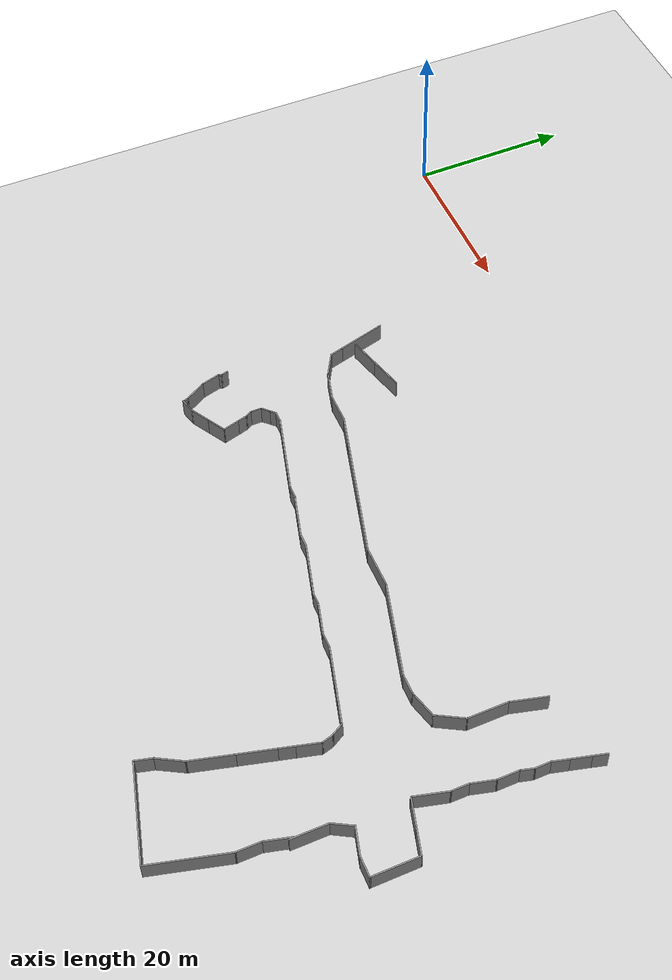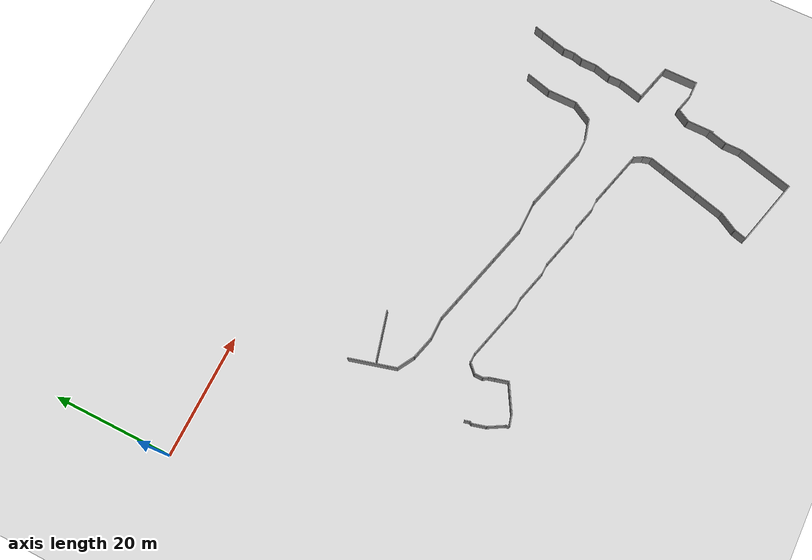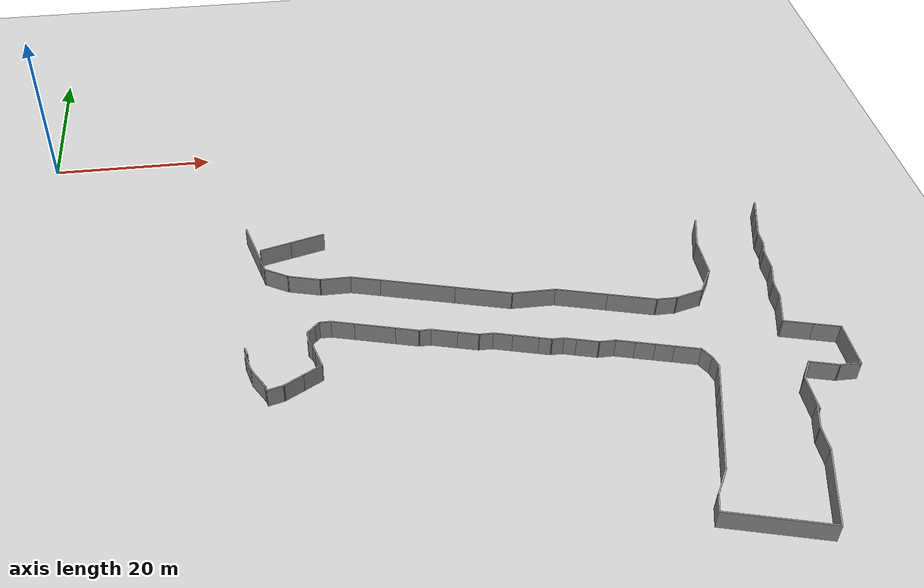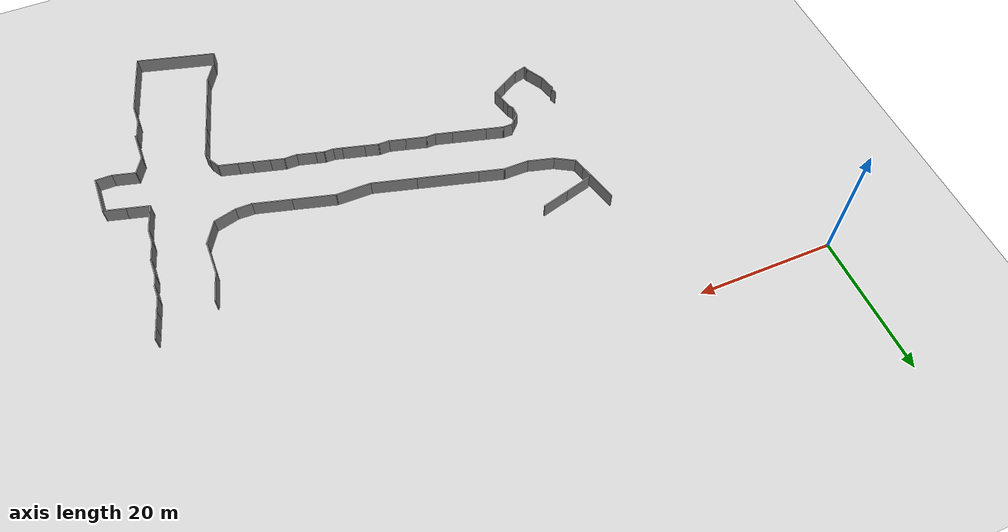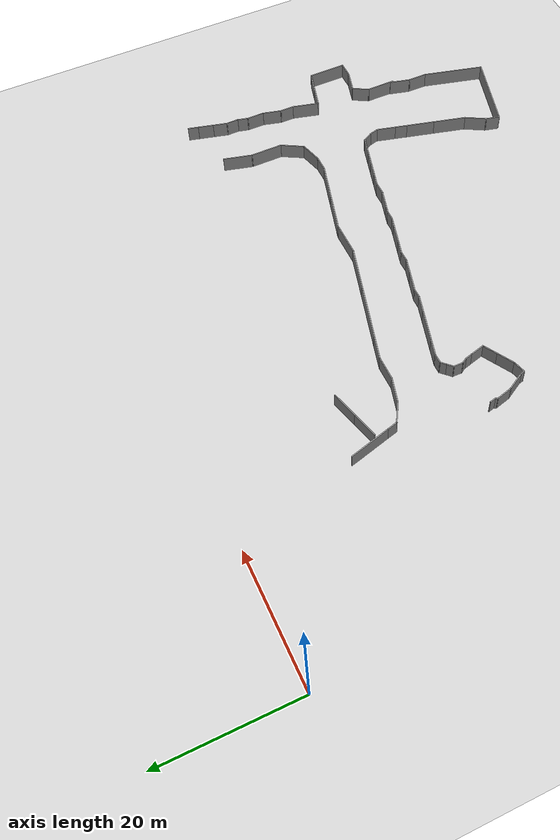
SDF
<sdf version="1.7">
 <world name="default">
  <model name="ground_plane">
   <static>1</static>
   <link name="link">
    <collision name="collision">
     <geometry><plane><normal>0 0 1</normal><size>500 500</size></plane></geometry>
     <surface><friction><ode><mu>100</mu><mu2>50</mu2></ode></friction></surface>
    </collision>
    <visual name="visual">
     <cast_shadows>0</cast_shadows>
     <geometry><plane><normal>0 0 1</normal><size>500 500</size></plane></geometry>
     <material>
      <script><uri>file://media/materials/scripts/gazebo.material</uri><name>Gazebo/Grey</name></script>
     </material>
    </visual>
   </link>
  </model>
  <model name="out_door1">
   <pose>25.5832 12.3476 0 0 -0 0</pose>
   <link name="Wall_102">
    <collision name="Wall_102_Collision">
     <geometry><box><size>4.5 0.15 2.5</size></box></geometry>
     <pose>0 0 1.25 0 -0 0</pose>
    </collision>
    <visual name="Wall_102_Visual">
     <pose>0 0 1.25 0 -0 0</pose>
     <geometry><box><size>4.5 0.15 2.5</size></box></geometry>
     <material>
      <script><uri>file://media/materials/scripts/gazebo.material</uri><name>Gazebo/Grey</name></script>
      <ambient>1 1 1 1</ambient>
     </material>
     <meta><layer>0</layer></meta>
    </visual>
    <pose>58.6011 -63.758 0 0 -0 1.5708</pose>
   </link>
   <link name="Wall_103">
    <collision name="Wall_103_Collision">
     <geometry><box><size>2.75 0.15 2.5</size></box></geometry>
     <pose>0 0 1.25 0 -0 0</pose>
    </collision>
    <visual name="Wall_103_Visual">
     <pose>0 0 1.25 0 -0 0</pose>
     <geometry><box><size>2.75 0.15 2.5</size></box></geometry>
     <material>
      <script><uri>file://media/materials/scripts/gazebo.material</uri><name>Gazebo/Grey</name></script>
      <ambient>1 1 1 1</ambient>
     </material>
     <meta><layer>0</layer></meta>
    </visual>
    <pose>59.2511 -60.4572 0 0 -0 1.0472</pose>
   </link>
   <link name="Wall_104">
    <collision name="Wall_104_Collision">
     <geometry><box><size>3.5 0.15 2.5</size></box></geometry>
     <pose>0 0 1.25 0 -0 0</pose>
    </collision>
    <visual name="Wall_104_Visual">
     <pose>0 0 1.25 0 -0 0</pose>
     <geometry><box><size>3.5 0.15 2.5</size></box></geometry>
     <material>
      <script><uri>file://media/materials/scripts/gazebo.material</uri><name>Gazebo/Grey</name></script>
      <ambient>1 1 1 1</ambient>
     </material>
     <meta><layer>0</layer></meta>
    </visual>
    <pose>61.519 -59.7649 0 0 -0 -0.261799</pose>
   </link>
   <link name="Wall_105">
    <collision name="Wall_105_Collision">
     <geometry><box><size>2.5 0.15 2.5</size></box></geometry>
     <pose>0 0 1.25 0 -0 0</pose>
    </collision>
    <visual name="Wall_105_Visual">
     <pose>0 0 1.25 0 -0 0</pose>
     <geometry><box><size>2.5 0.15 2.5</size></box></geometry>
     <material>
      <script><uri>file://media/materials/scripts/gazebo.material</uri><name>Gazebo/Grey</name></script>
      <ambient>1 1 1 1</ambient>
     </material>
     <meta><layer>0</layer></meta>
    </visual>
    <pose>64.3119 -60.1984 0 0 -0 0</pose>
   </link>
   <link name="Wall_106">
    <collision name="Wall_106_Collision">
     <geometry><box><size>5.75 0.15 2.5</size></box></geometry>
     <pose>0 0 1.25 0 -0 0</pose>
    </collision>
    <visual name="Wall_106_Visual">
     <pose>0 0 1.25 0 -0 0</pose>
     <geometry><box><size>5.75 0.15 2.5</size></box></geometry>
     <material>
      <script><uri>file://media/materials/scripts/gazebo.material</uri><name>Gazebo/Grey</name></script>
      <ambient>1 1 1 1</ambient>
     </material>
     <meta><layer>0</layer></meta>
    </visual>
    <pose>65.4869 -57.3984 0 0 -0 1.5708</pose>
   </link>
   <link name="Wall_107">
    <collision name="Wall_107_Collision">
     <geometry><box><size>3.25 0.15 2.5</size></box></geometry>
     <pose>0 0 1.25 0 -0 0</pose>
    </collision>
    <visual name="Wall_107_Visual">
     <pose>0 0 1.25 0 -0 0</pose>
     <geometry><box><size>3.25 0.15 2.5</size></box></geometry>
     <material>
      <script><uri>file://media/materials/scripts/gazebo.material</uri><name>Gazebo/Grey</name></script>
      <ambient>1 1 1 1</ambient>
     </material>
     <meta><layer>0</layer></meta>
    </visual>
    <pose>63.9897 -54.1972 0 0 -0 2.87979</pose>
   </link>
   <link name="Wall_108">
    <collision name="Wall_108_Collision">
     <geometry><box><size>3.5 0.15 2.5</size></box></geometry>
     <pose>0 0 1.25 0 -0 0</pose>
    </collision>
    <visual name="Wall_108_Visual">
     <pose>0 0 1.25 0 -0 0</pose>
     <geometry><box><size>3.5 0.15 2.5</size></box></geometry>
     <material>
      <script><uri>file://media/materials/scripts/gazebo.material</uri><name>Gazebo/Grey</name></script>
      <ambient>1 1 1 1</ambient>
     </material>
     <meta><layer>0</layer></meta>
    </visual>
    <pose>60.8746 -53.3625 0 0 -0 2.87979</pose>
   </link>
   <link name="Wall_109">
    <collision name="Wall_109_Collision">
     <geometry><box><size>4.25 0.15 2.5</size></box></geometry>
     <pose>0 0 1.25 0 -0 0</pose>
    </collision>
    <visual name="Wall_109_Visual">
     <pose>0 0 1.25 0 -0 0</pose>
     <geometry><box><size>4.25 0.15 2.5</size></box></geometry>
     <material>
      <script><uri>file://media/materials/scripts/gazebo.material</uri><name>Gazebo/Grey</name></script>
      <ambient>1 1 1 1</ambient>
     </material>
     <meta><layer>0</layer></meta>
    </visual>
    <pose>59.7873 -50.9489 0 0 -0 1.309</pose>
   </link>
   <link name="Wall_110">
    <collision name="Wall_110_Collision">
     <geometry><box><size>2.25 0.15 2.5</size></box></geometry>
     <pose>0 0 1.25 0 -0 0</pose>
    </collision>
    <visual name="Wall_110_Visual">
     <pose>0 0 1.25 0 -0 0</pose>
     <geometry><box><size>2.25 0.15 2.5</size></box></geometry>
     <material>
      <script><uri>file://media/materials/scripts/gazebo.material</uri><name>Gazebo/Grey</name></script>
      <ambient>1 1 1 1</ambient>
     </material>
     <meta><layer>0</layer></meta>
    </visual>
    <pose>60.3178 -47.9187 0 0 -0 1.5708</pose>
   </link>
   <link name="Wall_112">
    <collision name="Wall_112_Collision">
     <geometry><box><size>3 0.15 2.5</size></box></geometry>
     <pose>0 0 1.25 0 -0 0</pose>
    </collision>
    <visual name="Wall_112_Visual">
     <pose>0 0 1.25 0 -0 0</pose>
     <geometry><box><size>3 0.15 2.5</size></box></geometry>
     <material>
      <script><uri>file://media/materials/scripts/gazebo.material</uri><name>Gazebo/Grey</name></script>
      <ambient>1 1 1 1</ambient>
     </material>
     <meta><layer>0</layer></meta>
    </visual>
    <pose>60.6867 -45.4923 0 0 -0 1.309</pose>
   </link>
   <link name="Wall_113">
    <collision name="Wall_113_Collision">
     <geometry><box><size>2.75 0.15 2.5</size></box></geometry>
     <pose>0 0 1.25 0 -0 0</pose>
    </collision>
    <visual name="Wall_113_Visual">
     <pose>0 0 1.25 0 -0 0</pose>
     <geometry><box><size>2.75 0.15 2.5</size></box></geometry>
     <material>
      <script><uri>file://media/materials/scripts/gazebo.material</uri><name>Gazebo/Grey</name></script>
      <ambient>1 1 1 1</ambient>
     </material>
     <meta><layer>0</layer></meta>
    </visual>
    <pose>61.0555 -42.8158 0 0 -0 1.5708</pose>
   </link>
   <link name="Wall_114">
    <collision name="Wall_114_Collision">
     <geometry><box><size>1.75 0.15 2.5</size></box></geometry>
     <pose>0 0 1.25 0 -0 0</pose>
    </collision>
    <visual name="Wall_114_Visual">
     <pose>0 0 1.25 0 -0 0</pose>
     <geometry><box><size>1.75 0.15 2.5</size></box></geometry>
     <material>
      <script><uri>file://media/materials/scripts/gazebo.material</uri><name>Gazebo/Grey</name></script>
      <ambient>1 1 1 1</ambient>
     </material>
     <meta><layer>0</layer></meta>
    </visual>
    <pose>61.2625 -40.7431 0 0 -0 1.309</pose>
   </link>
   <link name="Wall_115">
    <collision name="Wall_115_Collision">
     <geometry><box><size>2 0.15 2.5</size></box></geometry>
     <pose>0 0 1.25 0 -0 0</pose>
    </collision>
    <visual name="Wall_115_Visual">
     <pose>0 0 1.25 0 -0 0</pose>
     <geometry><box><size>2 0.15 2.5</size></box></geometry>
     <material>
      <script><uri>file://media/materials/scripts/gazebo.material</uri><name>Gazebo/Grey</name></script>
      <ambient>1 1 1 1</ambient>
     </material>
     <meta><layer>0</layer></meta>
    </visual>
    <pose>61.4696 -39.0454 0 0 -0 1.5708</pose>
   </link>
   <link name="Wall_116">
    <collision name="Wall_116_Collision">
     <geometry><box><size>2.25 0.15 2.5</size></box></geometry>
     <pose>0 0 1.25 0 -0 0</pose>
    </collision>
    <visual name="Wall_116_Visual">
     <pose>0 0 1.25 0 -0 0</pose>
     <geometry><box><size>2.25 0.15 2.5</size></box></geometry>
     <material>
      <script><uri>file://media/materials/scripts/gazebo.material</uri><name>Gazebo/Grey</name></script>
      <ambient>1 1 1 1</ambient>
     </material>
     <meta><layer>0</layer></meta>
    </visual>
    <pose>61.7413 -37.1061 0 0 -0 1.309</pose>
   </link>
   <link name="Wall_117">
    <collision name="Wall_117_Collision">
     <geometry><box><size>2.5 0.15 2.5</size></box></geometry>
     <pose>0 0 1.25 0 -0 0</pose>
    </collision>
    <visual name="Wall_117_Visual">
     <pose>0 0 1.25 0 -0 0</pose>
     <geometry><box><size>2.5 0.15 2.5</size></box></geometry>
     <material>
      <script><uri>file://media/materials/scripts/gazebo.material</uri><name>Gazebo/Grey</name></script>
      <ambient>1 1 1 1</ambient>
     </material>
     <meta><layer>0</layer></meta>
    </visual>
    <pose>62.3172 -34.9569 0 0 -0 1.309</pose>
   </link>
   <link name="Wall_118">
    <collision name="Wall_118_Collision">
     <geometry><box><size>1.75 0.15 2.5</size></box></geometry>
     <pose>0 0 1.25 0 -0 0</pose>
    </collision>
    <visual name="Wall_118_Visual">
     <pose>0 0 1.25 0 -0 0</pose>
     <geometry><box><size>1.75 0.15 2.5</size></box></geometry>
     <material>
      <script><uri>file://media/materials/scripts/gazebo.material</uri><name>Gazebo/Grey</name></script>
      <ambient>1 1 1 1</ambient>
     </material>
     <meta><layer>0</layer></meta>
    </visual>
    <pose>62.8284 -33.0492 0 0 -0 1.309</pose>
   </link>
   <link name="Wall_480">
    <collision name="Wall_480_Collision">
     <geometry><box><size>6.25 0.15 2.5</size></box></geometry>
     <pose>0 0 1.25 0 -0 0</pose>
    </collision>
    <visual name="Wall_480_Visual">
     <pose>0 0 1.25 0 -0 0</pose>
     <geometry><box><size>6.25 0.15 2.5</size></box></geometry>
     <material>
      <script><uri>file://media/materials/scripts/gazebo.material</uri><name>Gazebo/Grey</name></script>
      <ambient>1 1 1 1</ambient>
     </material>
     <meta><layer>0</layer></meta>
    </visual>
    <pose>0.07789 -32.83 0 0 -0 -1.309</pose>
   </link>
   <link name="Wall_481">
    <collision name="Wall_481_Collision">
     <geometry><box><size>1.75 0.15 2.5</size></box></geometry>
     <pose>0 0 1.25 0 -0 0</pose>
    </collision>
    <visual name="Wall_481_Visual">
     <pose>0 0 1.25 0 -0 0</pose>
     <geometry><box><size>1.75 0.15 2.5</size></box></geometry>
     <material>
      <script><uri>file://media/materials/scripts/gazebo.material</uri><name>Gazebo/Grey</name></script>
      <ambient>1 1 1 1</ambient>
     </material>
     <meta><layer>0</layer></meta>
    </visual>
    <pose>1.07435 -36.5488 0 0 -0 -1.309</pose>
   </link>
   <link name="Wall_482">
    <collision name="Wall_482_Collision">
     <geometry><box><size>3.25 0.15 2.5</size></box></geometry>
     <pose>0 0 1.25 0 -0 0</pose>
    </collision>
    <visual name="Wall_482_Visual">
     <pose>0 0 1.25 0 -0 0</pose>
     <geometry><box><size>3.25 0.15 2.5</size></box></geometry>
     <material>
      <script><uri>file://media/materials/scripts/gazebo.material</uri><name>Gazebo/Grey</name></script>
      <ambient>1 1 1 1</ambient>
     </material>
     <meta><layer>0</layer></meta>
    </visual>
    <pose>2.62374 -38.0965 0 0 -0 -0.523599</pose>
   </link>
   <link name="Wall_483">
    <collision name="Wall_483_Collision">
     <geometry><box><size>4 0.15 2.5</size></box></geometry>
     <pose>0 0 1.25 0 -0 0</pose>
    </collision>
    <visual name="Wall_483_Visual">
     <pose>0 0 1.25 0 -0 0</pose>
     <geometry><box><size>4 0.15 2.5</size></box></geometry>
     <material>
      <script><uri>file://media/materials/scripts/gazebo.material</uri><name>Gazebo/Grey</name></script>
      <ambient>1 1 1 1</ambient>
     </material>
     <meta><layer>0</layer></meta>
    </visual>
    <pose>5.82548 -39.3697 0 0 -0 -0.261799</pose>
   </link>
   <link name="Wall_484">
    <collision name="Wall_484_Collision">
     <geometry><box><size>3.75 0.15 2.5</size></box></geometry>
     <pose>0 0 1.25 0 -0 0</pose>
    </collision>
    <visual name="Wall_484_Visual">
     <pose>0 0 1.25 0 -0 0</pose>
     <geometry><box><size>3.75 0.15 2.5</size></box></geometry>
     <material>
      <script><uri>file://media/materials/scripts/gazebo.material</uri><name>Gazebo/Grey</name></script>
      <ambient>1 1 1 1</ambient>
     </material>
     <meta><layer>0</layer></meta>
    </visual>
    <pose>9.48489 -39.868 0 0 -0 0</pose>
   </link>
   <link name="Wall_485">
    <collision name="Wall_485_Collision">
     <geometry><box><size>3.75 0.15 2.5</size></box></geometry>
     <pose>0 0 1.25 0 -0 0</pose>
    </collision>
    <visual name="Wall_485_Visual">
     <pose>0 0 1.25 0 -0 0</pose>
     <geometry><box><size>3.75 0.15 2.5</size></box></geometry>
     <material>
      <script><uri>file://media/materials/scripts/gazebo.material</uri><name>Gazebo/Grey</name></script>
      <ambient>1 1 1 1</ambient>
     </material>
     <meta><layer>0</layer></meta>
    </visual>
    <pose>13.0236 -40.3338 0 0 -0 -0.261799</pose>
   </link>
   <link name="Wall_486">
    <collision name="Wall_486_Collision">
     <geometry><box><size>9 0.15 2.5</size></box></geometry>
     <pose>0 0 1.25 0 -0 0</pose>
    </collision>
    <visual name="Wall_486_Visual">
     <pose>0 0 1.25 0 -0 0</pose>
     <geometry><box><size>9 0.15 2.5</size></box></geometry>
     <material>
      <script><uri>file://media/materials/scripts/gazebo.material</uri><name>Gazebo/Grey</name></script>
      <ambient>1 1 1 1</ambient>
     </material>
     <meta><layer>0</layer></meta>
    </visual>
    <pose>19.0364 -41.945 0 0 -0 -0.261799</pose>
   </link>
   <link name="Wall_487">
    <collision name="Wall_487_Collision">
     <geometry><box><size>6.75 0.15 2.5</size></box></geometry>
     <pose>0 0 1.25 0 -0 0</pose>
    </collision>
    <visual name="Wall_487_Visual">
     <pose>0 0 1.25 0 -0 0</pose>
     <geometry><box><size>6.75 0.15 2.5</size></box></geometry>
     <material>
      <script><uri>file://media/materials/scripts/gazebo.material</uri><name>Gazebo/Grey</name></script>
      <ambient>1 1 1 1</ambient>
     </material>
     <meta><layer>0</layer></meta>
    </visual>
    <pose>26.4982 -43.9444 0 0 -0 -0.261799</pose>
   </link>
   <link name="Wall_488">
    <collision name="Wall_488_Collision">
     <geometry><box><size>5.25 0.15 2.5</size></box></geometry>
     <pose>0 0 1.25 0 -0 0</pose>
    </collision>
    <visual name="Wall_488_Visual">
     <pose>0 0 1.25 0 -0 0</pose>
     <geometry><box><size>5.25 0.15 2.5</size></box></geometry>
     <material>
      <script><uri>file://media/materials/scripts/gazebo.material</uri><name>Gazebo/Grey</name></script>
      <ambient>1 1 1 1</ambient>
     </material>
     <meta><layer>0</layer></meta>
    </visual>
    <pose>32.2358 -44.7985 0 0 -0 0</pose>
   </link>
   <link name="Wall_489">
    <collision name="Wall_489_Collision">
     <geometry><box><size>6.25 0.15 2.5</size></box></geometry>
     <pose>0 0 1.25 0 -0 0</pose>
    </collision>
    <visual name="Wall_489_Visual">
     <pose>0 0 1.25 0 -0 0</pose>
     <geometry><box><size>6.25 0.15 2.5</size></box></geometry>
     <material>
      <script><uri>file://media/materials/scripts/gazebo.material</uri><name>Gazebo/Grey</name></script>
      <ambient>1 1 1 1</ambient>
     </material>
     <meta><layer>0</layer></meta>
    </visual>
    <pose>37.7319 -45.5879 0 0 -0 -0.261799</pose>
   </link>
   <link name="Wall_490">
    <collision name="Wall_490_Collision">
     <geometry><box><size>5.75 0.15 2.5</size></box></geometry>
     <pose>0 0 1.25 0 -0 0</pose>
    </collision>
    <visual name="Wall_490_Visual">
     <pose>0 0 1.25 0 -0 0</pose>
     <geometry><box><size>5.75 0.15 2.5</size></box></geometry>
     <material>
      <script><uri>file://media/materials/scripts/gazebo.material</uri><name>Gazebo/Grey</name></script>
      <ambient>1 1 1 1</ambient>
     </material>
     <meta><layer>0</layer></meta>
    </visual>
    <pose>43.3825 -47.102 0 0 -0 -0.261799</pose>
   </link>
   <link name="Wall_491">
    <collision name="Wall_491_Collision">
     <geometry><box><size>2.5 0.15 2.5</size></box></geometry>
     <pose>0 0 1.25 0 -0 0</pose>
    </collision>
    <visual name="Wall_491_Visual">
     <pose>0 0 1.25 0 -0 0</pose>
     <geometry><box><size>2.5 0.15 2.5</size></box></geometry>
     <material>
      <script><uri>file://media/materials/scripts/gazebo.material</uri><name>Gazebo/Grey</name></script>
      <ambient>1 1 1 1</ambient>
     </material>
     <meta><layer>0</layer></meta>
    </visual>
    <pose>47.2621 -47.8266 0 0 -0 0</pose>
   </link>
   <link name="Wall_492">
    <collision name="Wall_492_Collision">
     <geometry><box><size>3.5 0.15 2.5</size></box></geometry>
     <pose>0 0 1.25 0 -0 0</pose>
    </collision>
    <visual name="Wall_492_Visual">
     <pose>0 0 1.25 0 -0 0</pose>
     <geometry><box><size>3.5 0.15 2.5</size></box></geometry>
     <material>
      <script><uri>file://media/materials/scripts/gazebo.material</uri><name>Gazebo/Grey</name></script>
      <ambient>1 1 1 1</ambient>
     </material>
     <meta><layer>0</layer></meta>
    </visual>
    <pose>50.055 -47.3931 0 0 -0 0.261799</pose>
   </link>
   <link name="Wall_493">
    <collision name="Wall_493_Collision">
     <geometry><box><size>3.75 0.15 2.5</size></box></geometry>
     <pose>0 0 1.25 0 -0 0</pose>
    </collision>
    <visual name="Wall_493_Visual">
     <pose>0 0 1.25 0 -0 0</pose>
     <geometry><box><size>3.75 0.15 2.5</size></box></geometry>
     <material>
      <script><uri>file://media/materials/scripts/gazebo.material</uri><name>Gazebo/Grey</name></script>
      <ambient>1 1 1 1</ambient>
     </material>
     <meta><layer>0</layer></meta>
    </visual>
    <pose>52.573 -45.4008 0 0 -0 1.0472</pose>
   </link>
   <link name="Wall_494">
    <collision name="Wall_494_Collision">
     <geometry><box><size>5 0.15 2.5</size></box></geometry>
     <pose>0 0 1.25 0 -0 0</pose>
    </collision>
    <visual name="Wall_494_Visual">
     <pose>0 0 1.25 0 -0 0</pose>
     <geometry><box><size>5 0.15 2.5</size></box></geometry>
     <material>
      <script><uri>file://media/materials/scripts/gazebo.material</uri><name>Gazebo/Grey</name></script>
      <ambient>1 1 1 1</ambient>
     </material>
     <meta><layer>0</layer></meta>
    </visual>
    <pose>53.473 -41.4169 0 0 -0 1.5708</pose>
   </link>
   <link name="Wall_495">
    <collision name="Wall_495_Collision">
     <geometry><box><size>4.5 0.15 2.5</size></box></geometry>
     <pose>0 0 1.25 0 -0 0</pose>
    </collision>
    <visual name="Wall_495_Visual">
     <pose>0 0 1.25 0 -0 0</pose>
     <geometry><box><size>4.5 0.15 2.5</size></box></geometry>
     <material>
      <script><uri>file://media/materials/scripts/gazebo.material</uri><name>Gazebo/Grey</name></script>
      <ambient>1 1 1 1</ambient>
     </material>
     <meta><layer>0</layer></meta>
    </visual>
    <pose>54.0359 -36.891 0 0 -0 1.309</pose>
   </link>
   <link name="Wall_51">
    <collision name="Wall_51_Collision">
     <geometry><box><size>1 0.15 2.5</size></box></geometry>
     <pose>0 0 1.25 0 -0 0</pose>
    </collision>
    <visual name="Wall_51_Visual">
     <pose>0 0 1.25 0 -0 0</pose>
     <geometry><box><size>1 0.15 2.5</size></box></geometry>
     <material>
      <script><uri>file://media/materials/scripts/gazebo.material</uri><name>Gazebo/Grey</name></script>
      <ambient>1 1 1 1</ambient>
     </material>
     <meta><layer>0</layer></meta>
    </visual>
    <pose>-1.20616 -50.4002 0 0 -0 -1.309</pose>
   </link>
   <link name="Wall_52">
    <collision name="Wall_52_Collision">
     <geometry><box><size>0.5 0.15 2.5</size></box></geometry>
     <pose>0 0 1.25 0 -0 0</pose>
    </collision>
    <visual name="Wall_52_Visual">
     <pose>0 0 1.25 0 -0 0</pose>
     <geometry><box><size>0.5 0.15 2.5</size></box></geometry>
     <material>
      <script><uri>file://media/materials/scripts/gazebo.material</uri><name>Gazebo/Grey</name></script>
      <ambient>1 1 1 1</ambient>
     </material>
     <meta><layer>0</layer></meta>
    </visual>
    <pose>-1.18366 -50.9623 0 0 -0 -2.0944</pose>
   </link>
   <link name="Wall_53">
    <collision name="Wall_53_Collision">
     <geometry><box><size>2.5 0.15 2.5</size></box></geometry>
     <pose>0 0 1.25 0 -0 0</pose>
    </collision>
    <visual name="Wall_53_Visual">
     <pose>0 0 1.25 0 -0 0</pose>
     <geometry><box><size>2.5 0.15 2.5</size></box></geometry>
     <material>
      <script><uri>file://media/materials/scripts/gazebo.material</uri><name>Gazebo/Grey</name></script>
      <ambient>1 1 1 1</ambient>
     </material>
     <meta><layer>0</layer></meta>
    </visual>
    <pose>-0.967052 -52.2488 0 0 -0 -1.309</pose>
   </link>
   <link name="Wall_531">
    <collision name="Wall_531_Collision">
     <geometry><box><size>4.25 0.15 2.5</size></box></geometry>
     <pose>0 0 1.25 0 -0 0</pose>
    </collision>
    <visual name="Wall_531_Visual">
     <pose>0 0 1.25 0 -0 0</pose>
     <geometry><box><size>4.25 0.15 2.5</size></box></geometry>
     <material>
      <script><uri>file://media/materials/scripts/gazebo.material</uri><name>Gazebo/Grey</name></script>
      <ambient>1 1 1 1</ambient>
     </material>
     <meta><layer>0</layer></meta>
    </visual>
    <pose>6.61091 -32.3847 0 0 -0 -2.87979</pose>
   </link>
   <link name="Wall_532">
    <collision name="Wall_532_Collision">
     <geometry><box><size>4 0.15 2.5</size></box></geometry>
     <pose>0 0 1.25 0 -0 0</pose>
    </collision>
    <visual name="Wall_532_Visual">
     <pose>0 0 1.25 0 -0 0</pose>
     <geometry><box><size>4 0.15 2.5</size></box></geometry>
     <material>
      <script><uri>file://media/materials/scripts/gazebo.material</uri><name>Gazebo/Grey</name></script>
      <ambient>1 1 1 1</ambient>
     </material>
     <meta><layer>0</layer></meta>
    </visual>
    <pose>2.77135 -33.4135 0 0 -0 -2.87979</pose>
   </link>
   <link name="Wall_54">
    <collision name="Wall_54_Collision">
     <geometry><box><size>3 0.15 2.5</size></box></geometry>
     <pose>0 0 1.25 0 -0 0</pose>
    </collision>
    <visual name="Wall_54_Visual">
     <pose>0 0 1.25 0 -0 0</pose>
     <geometry><box><size>3 0.15 2.5</size></box></geometry>
     <material>
      <script><uri>file://media/materials/scripts/gazebo.material</uri><name>Gazebo/Grey</name></script>
      <ambient>1 1 1 1</ambient>
     </material>
     <meta><layer>0</layer></meta>
    </visual>
    <pose>0.049561 -54.6178 0 0 -0 -1.0472</pose>
   </link>
   <link name="Wall_55">
    <collision name="Wall_55_Collision">
     <geometry><box><size>0.75 0.15 2.5</size></box></geometry>
     <pose>0 0 1.25 0 -0 0</pose>
    </collision>
    <visual name="Wall_55_Visual">
     <pose>0 0 1.25 0 -0 0</pose>
     <geometry><box><size>0.75 0.15 2.5</size></box></geometry>
     <material>
      <script><uri>file://media/materials/scripts/gazebo.material</uri><name>Gazebo/Grey</name></script>
      <ambient>1 1 1 1</ambient>
     </material>
     <meta><layer>0</layer></meta>
    </visual>
    <pose>0.839706 -56.1417 0 0 -0 -1.309</pose>
   </link>
   <link name="Wall_56">
    <collision name="Wall_56_Collision">
     <geometry><box><size>2 0.15 2.5</size></box></geometry>
     <pose>0 0 1.25 0 -0 0</pose>
    </collision>
    <visual name="Wall_56_Visual">
     <pose>0 0 1.25 0 -0 0</pose>
     <geometry><box><size>2 0.15 2.5</size></box></geometry>
     <material>
      <script><uri>file://media/materials/scripts/gazebo.material</uri><name>Gazebo/Grey</name></script>
      <ambient>1 1 1 1</ambient>
     </material>
     <meta><layer>0</layer></meta>
    </visual>
    <pose>1.81083 -56.1921 0 0 -0 0.261799</pose>
   </link>
   <link name="Wall_57">
    <collision name="Wall_57_Collision">
     <geometry><box><size>2.75 0.15 2.5</size></box></geometry>
     <pose>0 0 1.25 0 -0 0</pose>
    </collision>
    <visual name="Wall_57_Visual">
     <pose>0 0 1.25 0 -0 0</pose>
     <geometry><box><size>2.75 0.15 2.5</size></box></geometry>
     <material>
      <script><uri>file://media/materials/scripts/gazebo.material</uri><name>Gazebo/Grey</name></script>
      <ambient>1 1 1 1</ambient>
     </material>
     <meta><layer>0</layer></meta>
    </visual>
    <pose>3.83015 -55.3026 0 0 -0 0.523599</pose>
   </link>
   <link name="Wall_58">
    <collision name="Wall_58_Collision">
     <geometry><box><size>2.5 0.15 2.5</size></box></geometry>
     <pose>0 0 1.25 0 -0 0</pose>
    </collision>
    <visual name="Wall_58_Visual">
     <pose>0 0 1.25 0 -0 0</pose>
     <geometry><box><size>2.5 0.15 2.5</size></box></geometry>
     <material>
      <script><uri>file://media/materials/scripts/gazebo.material</uri><name>Gazebo/Grey</name></script>
      <ambient>1 1 1 1</ambient>
     </material>
     <meta><layer>0</layer></meta>
    </visual>
    <pose>5.97356 -54.0652 0 0 -0 0.523599</pose>
   </link>
   <link name="Wall_59">
    <collision name="Wall_59_Collision">
     <geometry><box><size>2.25 0.15 2.5</size></box></geometry>
     <pose>0 0 1.25 0 -0 0</pose>
    </collision>
    <visual name="Wall_59_Visual">
     <pose>0 0 1.25 0 -0 0</pose>
     <geometry><box><size>2.25 0.15 2.5</size></box></geometry>
     <material>
      <script><uri>file://media/materials/scripts/gazebo.material</uri><name>Gazebo/Grey</name></script>
      <ambient>1 1 1 1</ambient>
     </material>
     <meta><layer>0</layer></meta>
    </visual>
    <pose>6.71938 -52.4634 0 0 -0 1.8326</pose>
   </link>
   <link name="Wall_60">
    <collision name="Wall_60_Collision">
     <geometry><box><size>1.25 0.15 2.5</size></box></geometry>
     <pose>0 0 1.25 0 -0 0</pose>
    </collision>
    <visual name="Wall_60_Visual">
     <pose>0 0 1.25 0 -0 0</pose>
     <geometry><box><size>1.25 0.15 2.5</size></box></geometry>
     <material>
      <script><uri>file://media/materials/scripts/gazebo.material</uri><name>Gazebo/Grey</name></script>
      <ambient>1 1 1 1</ambient>
     </material>
     <meta><layer>0</layer></meta>
    </visual>
    <pose>6.30527 -50.9179 0 0 -0 1.8326</pose>
   </link>
   <link name="Wall_61">
    <collision name="Wall_61_Collision">
     <geometry><box><size>1 0.15 2.5</size></box></geometry>
     <pose>0 0 1.25 0 -0 0</pose>
    </collision>
    <visual name="Wall_61_Visual">
     <pose>0 0 1.25 0 -0 0</pose>
     <geometry><box><size>1 0.15 2.5</size></box></geometry>
     <material>
      <script><uri>file://media/materials/scripts/gazebo.material</uri><name>Gazebo/Grey</name></script>
      <ambient>1 1 1 1</ambient>
     </material>
     <meta><layer>0</layer></meta>
    </visual>
    <pose>5.95042 -50.0186 0 0 -0 2.0944</pose>
   </link>
   <link name="Wall_62">
    <collision name="Wall_62_Collision">
     <geometry><box><size>1.5 0.15 2.5</size></box></geometry>
     <pose>0 0 1.25 0 -0 0</pose>
    </collision>
    <visual name="Wall_62_Visual">
     <pose>0 0 1.25 0 -0 0</pose>
     <geometry><box><size>1.5 0.15 2.5</size></box></geometry>
     <material>
      <script><uri>file://media/materials/scripts/gazebo.material</uri><name>Gazebo/Grey</name></script>
      <ambient>1 1 1 1</ambient>
     </material>
     <meta><layer>0</layer></meta>
    </visual>
    <pose>5.73792 -48.9756 0 0 -0 1.5708</pose>
   </link>
   <link name="Wall_63">
    <collision name="Wall_63_Collision">
     <geometry><box><size>1.25 0.15 2.5</size></box></geometry>
     <pose>0 0 1.25 0 -0 0</pose>
    </collision>
    <visual name="Wall_63_Visual">
     <pose>0 0 1.25 0 -0 0</pose>
     <geometry><box><size>1.25 0.15 2.5</size></box></geometry>
     <material>
      <script><uri>file://media/materials/scripts/gazebo.material</uri><name>Gazebo/Grey</name></script>
      <ambient>1 1 1 1</ambient>
     </material>
     <meta><layer>0</layer></meta>
    </visual>
    <pose>6.12683 -47.9117 0 0 -0 0.785398</pose>
   </link>
   <link name="Wall_64">
    <collision name="Wall_64_Collision">
     <geometry><box><size>1 0.15 2.5</size></box></geometry>
     <pose>0 0 1.25 0 -0 0</pose>
    </collision>
    <visual name="Wall_64_Visual">
     <pose>0 0 1.25 0 -0 0</pose>
     <geometry><box><size>1 0.15 2.5</size></box></geometry>
     <material>
      <script><uri>file://media/materials/scripts/gazebo.material</uri><name>Gazebo/Grey</name></script>
      <ambient>1 1 1 1</ambient>
     </material>
     <meta><layer>0</layer></meta>
    </visual>
    <pose>6.81626 -47.2222 0 0 -0 0.785398</pose>
   </link>
   <link name="Wall_65">
    <collision name="Wall_65_Collision">
     <geometry><box><size>1.5 0.15 2.5</size></box></geometry>
     <pose>0 0 1.25 0 -0 0</pose>
    </collision>
    <visual name="Wall_65_Visual">
     <pose>0 0 1.25 0 -0 0</pose>
     <geometry><box><size>1.5 0.15 2.5</size></box></geometry>
     <material>
      <script><uri>file://media/materials/scripts/gazebo.material</uri><name>Gazebo/Grey</name></script>
      <ambient>1 1 1 1</ambient>
     </material>
     <meta><layer>0</layer></meta>
    </visual>
    <pose>7.79178 -46.9217 0 0 -0 0</pose>
   </link>
   <link name="Wall_67">
    <collision name="Wall_67_Collision">
     <geometry><box><size>2.75 0.15 2.5</size></box></geometry>
     <pose>0 0 1.25 0 -0 0</pose>
    </collision>
    <visual name="Wall_67_Visual">
     <pose>0 0 1.25 0 -0 0</pose>
     <geometry><box><size>2.75 0.15 2.5</size></box></geometry>
     <material>
      <script><uri>file://media/materials/scripts/gazebo.material</uri><name>Gazebo/Grey</name></script>
      <ambient>1 1 1 1</ambient>
     </material>
     <meta><layer>0</layer></meta>
    </visual>
    <pose>9.72248 -47.2582 0 0 -0 -0.261799</pose>
   </link>
   <link name="Wall_68">
    <collision name="Wall_68_Collision">
     <geometry><box><size>5 0.15 2.5</size></box></geometry>
     <pose>0 0 1.25 0 -0 0</pose>
    </collision>
    <visual name="Wall_68_Visual">
     <pose>0 0 1.25 0 -0 0</pose>
     <geometry><box><size>5 0.15 2.5</size></box></geometry>
     <material>
      <script><uri>file://media/materials/scripts/gazebo.material</uri><name>Gazebo/Grey</name></script>
      <ambient>1 1 1 1</ambient>
     </material>
     <meta><layer>0</layer></meta>
    </visual>
    <pose>13.3206 -48.2223 0 0 -0 -0.261799</pose>
   </link>
   <link name="Wall_69">
    <collision name="Wall_69_Collision">
     <geometry><box><size>2.75 0.15 2.5</size></box></geometry>
     <pose>0 0 1.25 0 -0 0</pose>
    </collision>
    <visual name="Wall_69_Visual">
     <pose>0 0 1.25 0 -0 0</pose>
     <geometry><box><size>2.75 0.15 2.5</size></box></geometry>
     <material>
      <script><uri>file://media/materials/scripts/gazebo.material</uri><name>Gazebo/Grey</name></script>
      <ambient>1 1 1 1</ambient>
     </material>
     <meta><layer>0</layer></meta>
    </visual>
    <pose>16.9186 -49.1864 0 0 -0 -0.261799</pose>
   </link>
   <link name="Wall_70">
    <collision name="Wall_70_Collision">
     <geometry><box><size>1.5 0.15 2.5</size></box></geometry>
     <pose>0 0 1.25 0 -0 0</pose>
    </collision>
    <visual name="Wall_70_Visual">
     <pose>0 0 1.25 0 -0 0</pose>
     <geometry><box><size>1.5 0.15 2.5</size></box></geometry>
     <material>
      <script><uri>file://media/materials/scripts/gazebo.material</uri><name>Gazebo/Grey</name></script>
      <ambient>1 1 1 1</ambient>
     </material>
     <meta><layer>0</layer></meta>
    </visual>
    <pose>18.8493 -49.5228 0 0 -0 0</pose>
   </link>
   <link name="Wall_71">
    <collision name="Wall_71_Collision">
     <geometry><box><size>3.25 0.15 2.5</size></box></geometry>
     <pose>0 0 1.25 0 -0 0</pose>
    </collision>
    <visual name="Wall_71_Visual">
     <pose>0 0 1.25 0 -0 0</pose>
     <geometry><box><size>3.25 0.15 2.5</size></box></geometry>
     <material>
      <script><uri>file://media/materials/scripts/gazebo.material</uri><name>Gazebo/Grey</name></script>
      <ambient>1 1 1 1</ambient>
     </material>
     <meta><layer>0</layer></meta>
    </visual>
    <pose>21.0215 -49.924 0 0 -0 -0.261799</pose>
   </link>
   <link name="Wall_72">
    <collision name="Wall_72_Collision">
     <geometry><box><size>2.5 0.15 2.5</size></box></geometry>
     <pose>0 0 1.25 0 -0 0</pose>
    </collision>
    <visual name="Wall_72_Visual">
     <pose>0 0 1.25 0 -0 0</pose>
     <geometry><box><size>2.5 0.15 2.5</size></box></geometry>
     <material>
      <script><uri>file://media/materials/scripts/gazebo.material</uri><name>Gazebo/Grey</name></script>
      <ambient>1 1 1 1</ambient>
     </material>
     <meta><layer>0</layer></meta>
    </visual>
    <pose>23.6537 -50.6293 0 0 -0 -0.261799</pose>
   </link>
   <link name="Wall_74">
    <collision name="Wall_74_Collision">
     <geometry><box><size>1.75 0.15 2.5</size></box></geometry>
     <pose>0 0 1.25 0 -0 0</pose>
    </collision>
    <visual name="Wall_74_Visual">
     <pose>0 0 1.25 0 -0 0</pose>
     <geometry><box><size>1.75 0.15 2.5</size></box></geometry>
     <material>
      <script><uri>file://media/materials/scripts/gazebo.material</uri><name>Gazebo/Grey</name></script>
      <ambient>1 1 1 1</ambient>
     </material>
     <meta><layer>0</layer></meta>
    </visual>
    <pose>25.5886 -50.9334 0 0 -0 0</pose>
   </link>
   <link name="Wall_75">
    <collision name="Wall_75_Collision">
     <geometry><box><size>2.25 0.15 2.5</size></box></geometry>
     <pose>0 0 1.25 0 -0 0</pose>
    </collision>
    <visual name="Wall_75_Visual">
     <pose>0 0 1.25 0 -0 0</pose>
     <geometry><box><size>2.25 0.15 2.5</size></box></geometry>
     <material>
      <script><uri>file://media/materials/scripts/gazebo.material</uri><name>Gazebo/Grey</name></script>
      <ambient>1 1 1 1</ambient>
     </material>
     <meta><layer>0</layer></meta>
    </visual>
    <pose>27.4028 -51.2052 0 0 -0 -0.261799</pose>
   </link>
   <link name="Wall_76">
    <collision name="Wall_76_Collision">
     <geometry><box><size>3.25 0.15 2.5</size></box></geometry>
     <pose>0 0 1.25 0 -0 0</pose>
    </collision>
    <visual name="Wall_76_Visual">
     <pose>0 0 1.25 0 -0 0</pose>
     <geometry><box><size>3.25 0.15 2.5</size></box></geometry>
     <material>
      <script><uri>file://media/materials/scripts/gazebo.material</uri><name>Gazebo/Grey</name></script>
      <ambient>1 1 1 1</ambient>
     </material>
     <meta><layer>0</layer></meta>
    </visual>
    <pose>29.9143 -51.8781 0 0 -0 -0.261799</pose>
   </link>
   <link name="Wall_77">
    <collision name="Wall_77_Collision">
     <geometry><box><size>1.5 0.15 2.5</size></box></geometry>
     <pose>0 0 1.25 0 -0 0</pose>
    </collision>
    <visual name="Wall_77_Visual">
     <pose>0 0 1.25 0 -0 0</pose>
     <geometry><box><size>1.5 0.15 2.5</size></box></geometry>
     <material>
      <script><uri>file://media/materials/scripts/gazebo.material</uri><name>Gazebo/Grey</name></script>
      <ambient>1 1 1 1</ambient>
     </material>
     <meta><layer>0</layer></meta>
    </visual>
    <pose>32.0634 -52.454 0 0 -0 -0.261799</pose>
   </link>
   <link name="Wall_78">
    <collision name="Wall_78_Collision">
     <geometry><box><size>1.5 0.15 2.5</size></box></geometry>
     <pose>0 0 1.25 0 -0 0</pose>
    </collision>
    <visual name="Wall_78_Visual">
     <pose>0 0 1.25 0 -0 0</pose>
     <geometry><box><size>1.5 0.15 2.5</size></box></geometry>
     <material>
      <script><uri>file://media/materials/scripts/gazebo.material</uri><name>Gazebo/Grey</name></script>
      <ambient>1 1 1 1</ambient>
     </material>
     <meta><layer>0</layer></meta>
    </visual>
    <pose>33.3904 -52.6287 0 0 -0 0</pose>
   </link>
   <link name="Wall_79">
    <collision name="Wall_79_Collision">
     <geometry><box><size>1.5 0.15 2.5</size></box></geometry>
     <pose>0 0 1.25 0 -0 0</pose>
    </collision>
    <visual name="Wall_79_Visual">
     <pose>0 0 1.25 0 -0 0</pose>
     <geometry><box><size>1.5 0.15 2.5</size></box></geometry>
     <material>
      <script><uri>file://media/materials/scripts/gazebo.material</uri><name>Gazebo/Grey</name></script>
      <ambient>1 1 1 1</ambient>
     </material>
     <meta><layer>0</layer></meta>
    </visual>
    <pose>34.7174 -52.8034 0 0 -0 -0.261799</pose>
   </link>
   <link name="Wall_80">
    <collision name="Wall_80_Collision">
     <geometry><box><size>2.75 0.15 2.5</size></box></geometry>
     <pose>0 0 1.25 0 -0 0</pose>
    </collision>
    <visual name="Wall_80_Visual">
     <pose>0 0 1.25 0 -0 0</pose>
     <geometry><box><size>2.75 0.15 2.5</size></box></geometry>
     <material>
      <script><uri>file://media/materials/scripts/gazebo.material</uri><name>Gazebo/Grey</name></script>
      <ambient>1 1 1 1</ambient>
     </material>
     <meta><layer>0</layer></meta>
    </visual>
    <pose>36.6251 -53.3145 0 0 -0 -0.261799</pose>
   </link>
   <link name="Wall_81">
    <collision name="Wall_81_Collision">
     <geometry><box><size>2 0.15 2.5</size></box></geometry>
     <pose>0 0 1.25 0 -0 0</pose>
    </collision>
    <visual name="Wall_81_Visual">
     <pose>0 0 1.25 0 -0 0</pose>
     <geometry><box><size>2 0.15 2.5</size></box></geometry>
     <material>
      <script><uri>file://media/materials/scripts/gazebo.material</uri><name>Gazebo/Grey</name></script>
      <ambient>1 1 1 1</ambient>
     </material>
     <meta><layer>0</layer></meta>
    </visual>
    <pose>38.8058 -53.651 0 0 -0 0</pose>
   </link>
   <link name="Wall_82">
    <collision name="Wall_82_Collision">
     <geometry><box><size>2.25 0.15 2.5</size></box></geometry>
     <pose>0 0 1.25 0 -0 0</pose>
    </collision>
    <visual name="Wall_82_Visual">
     <pose>0 0 1.25 0 -0 0</pose>
     <geometry><box><size>2.25 0.15 2.5</size></box></geometry>
     <material>
      <script><uri>file://media/materials/scripts/gazebo.material</uri><name>Gazebo/Grey</name></script>
      <ambient>1 1 1 1</ambient>
     </material>
     <meta><layer>0</layer></meta>
    </visual>
    <pose>40.7451 -53.9228 0 0 -0 -0.261799</pose>
   </link>
   <link name="Wall_83">
    <collision name="Wall_83_Collision">
     <geometry><box><size>2.5 0.15 2.5</size></box></geometry>
     <pose>0 0 1.25 0 -0 0</pose>
    </collision>
    <visual name="Wall_83_Visual">
     <pose>0 0 1.25 0 -0 0</pose>
     <geometry><box><size>2.5 0.15 2.5</size></box></geometry>
     <material>
      <script><uri>file://media/materials/scripts/gazebo.material</uri><name>Gazebo/Grey</name></script>
      <ambient>1 1 1 1</ambient>
     </material>
     <meta><layer>0</layer></meta>
    </visual>
    <pose>42.8943 -54.4986 0 0 -0 -0.261799</pose>
   </link>
   <link name="Wall_84">
    <collision name="Wall_84_Collision">
     <geometry><box><size>2.25 0.15 2.5</size></box></geometry>
     <pose>0 0 1.25 0 -0 0</pose>
    </collision>
    <visual name="Wall_84_Visual">
     <pose>0 0 1.25 0 -0 0</pose>
     <geometry><box><size>2.25 0.15 2.5</size></box></geometry>
     <material>
      <script><uri>file://media/materials/scripts/gazebo.material</uri><name>Gazebo/Grey</name></script>
      <ambient>1 1 1 1</ambient>
     </material>
     <meta><layer>0</layer></meta>
    </visual>
    <pose>45.0434 -55.0745 0 0 -0 -0.261799</pose>
   </link>
   <link name="Wall_85">
    <collision name="Wall_85_Collision">
     <geometry><box><size>3 0.15 2.5</size></box></geometry>
     <pose>0 0 1.25 0 -0 0</pose>
    </collision>
    <visual name="Wall_85_Visual">
     <pose>0 0 1.25 0 -0 0</pose>
     <geometry><box><size>3 0.15 2.5</size></box></geometry>
     <material>
      <script><uri>file://media/materials/scripts/gazebo.material</uri><name>Gazebo/Grey</name></script>
      <ambient>1 1 1 1</ambient>
     </material>
     <meta><layer>0</layer></meta>
    </visual>
    <pose>47.4341 -55.7151 0 0 -0 -0.261799</pose>
   </link>
   <link name="Wall_86">
    <collision name="Wall_86_Collision">
     <geometry><box><size>1.75 0.15 2.5</size></box></geometry>
     <pose>0 0 1.25 0 -0 0</pose>
    </collision>
    <visual name="Wall_86_Visual">
     <pose>0 0 1.25 0 -0 0</pose>
     <geometry><box><size>1.75 0.15 2.5</size></box></geometry>
     <material>
      <script><uri>file://media/materials/scripts/gazebo.material</uri><name>Gazebo/Grey</name></script>
      <ambient>1 1 1 1</ambient>
     </material>
     <meta><layer>0</layer></meta>
    </visual>
    <pose>49.2105 -56.7767 0 0 -0 -1.0472</pose>
   </link>
   <link name="Wall_87">
    <collision name="Wall_87_Collision">
     <geometry><box><size>1.5 0.15 2.5</size></box></geometry>
     <pose>0 0 1.25 0 -0 0</pose>
    </collision>
    <visual name="Wall_87_Visual">
     <pose>0 0 1.25 0 -0 0</pose>
     <geometry><box><size>1.5 0.15 2.5</size></box></geometry>
     <material>
      <script><uri>file://media/materials/scripts/gazebo.material</uri><name>Gazebo/Grey</name></script>
      <ambient>1 1 1 1</ambient>
     </material>
     <meta><layer>0</layer></meta>
    </visual>
    <pose>49.7853 -58.1215 0 0 -0 -1.309</pose>
   </link>
   <link name="Wall_89">
    <collision name="Wall_89_Collision">
     <geometry><box><size>3 0.15 2.5</size></box></geometry>
     <pose>0 0 1.25 0 -0 0</pose>
    </collision>
    <visual name="Wall_89_Visual">
     <pose>0 0 1.25 0 -0 0</pose>
     <geometry><box><size>3 0.15 2.5</size></box></geometry>
     <material>
      <script><uri>file://media/materials/scripts/gazebo.material</uri><name>Gazebo/Grey</name></script>
      <ambient>1 1 1 1</ambient>
     </material>
     <meta><layer>0</layer></meta>
    </visual>
    <pose>49.5911 -60.15 0 0 -0 -1.8326</pose>
   </link>
   <link name="Wall_90">
    <collision name="Wall_90_Collision">
     <geometry><box><size>2 0.15 2.5</size></box></geometry>
     <pose>0 0 1.25 0 -0 0</pose>
    </collision>
    <visual name="Wall_90_Visual">
     <pose>0 0 1.25 0 -0 0</pose>
     <geometry><box><size>2 0.15 2.5</size></box></geometry>
     <material>
      <script><uri>file://media/materials/scripts/gazebo.material</uri><name>Gazebo/Grey</name></script>
      <ambient>1 1 1 1</ambient>
     </material>
     <meta><layer>0</layer></meta>
    </visual>
    <pose>48.9829 -62.4199 0 0 -0 -1.8326</pose>
   </link>
   <link name="Wall_91">
    <collision name="Wall_91_Collision">
     <geometry><box><size>4.5 0.15 2.5</size></box></geometry>
     <pose>0 0 1.25 0 -0 0</pose>
    </collision>
    <visual name="Wall_91_Visual">
     <pose>0 0 1.25 0 -0 0</pose>
     <geometry><box><size>4.5 0.15 2.5</size></box></geometry>
     <material>
      <script><uri>file://media/materials/scripts/gazebo.material</uri><name>Gazebo/Grey</name></script>
      <ambient>1 1 1 1</ambient>
     </material>
     <meta><layer>0</layer></meta>
    </visual>
    <pose>48.1806 -65.4143 0 0 -0 -1.8326</pose>
   </link>
   <link name="Wall_92">
    <collision name="Wall_92_Collision">
     <geometry><box><size>5.25 0.15 2.5</size></box></geometry>
     <pose>0 0 1.25 0 -0 0</pose>
    </collision>
    <visual name="Wall_92_Visual">
     <pose>0 0 1.25 0 -0 0</pose>
     <geometry><box><size>5.25 0.15 2.5</size></box></geometry>
     <material>
      <script><uri>file://media/materials/scripts/gazebo.material</uri><name>Gazebo/Grey</name></script>
      <ambient>1 1 1 1</ambient>
     </material>
     <meta><layer>0</layer></meta>
    </visual>
    <pose>46.9577 -69.9783 0 0 -0 -1.8326</pose>
   </link>
   <link name="Wall_93">
    <collision name="Wall_93_Collision">
     <geometry><box><size>3.5 0.15 2.5</size></box></geometry>
     <pose>0 0 1.25 0 -0 0</pose>
    </collision>
    <visual name="Wall_93_Visual">
     <pose>0 0 1.25 0 -0 0</pose>
     <geometry><box><size>3.5 0.15 2.5</size></box></geometry>
     <material>
      <script><uri>file://media/materials/scripts/gazebo.material</uri><name>Gazebo/Grey</name></script>
      <ambient>1 1 1 1</ambient>
     </material>
     <meta><layer>0</layer></meta>
    </visual>
    <pose>45.4602 -73.892 0 0 -0 -2.0944</pose>
   </link>
   <link name="Wall_94">
    <collision name="Wall_94_Collision">
     <geometry><box><size>2.25 0.15 2.5</size></box></geometry>
     <pose>0 0 1.25 0 -0 0</pose>
    </collision>
    <visual name="Wall_94_Visual">
     <pose>0 0 1.25 0 -0 0</pose>
     <geometry><box><size>2.25 0.15 2.5</size></box></geometry>
     <material>
      <script><uri>file://media/materials/scripts/gazebo.material</uri><name>Gazebo/Grey</name></script>
      <ambient>1 1 1 1</ambient>
     </material>
     <meta><layer>0</layer></meta>
    </visual>
    <pose>44.3509 -76.3568 0 0 -0 -1.8326</pose>
   </link>
   <link name="Wall_95">
    <collision name="Wall_95_Collision">
     <geometry><box><size>11.75 0.15 2.5</size></box></geometry>
     <pose>0 0 1.25 0 -0 0</pose>
    </collision>
    <visual name="Wall_95_Visual">
     <pose>0 0 1.25 0 -0 0</pose>
     <geometry><box><size>11.75 0.15 2.5</size></box></geometry>
     <material>
      <script><uri>file://media/materials/scripts/gazebo.material</uri><name>Gazebo/Grey</name></script>
      <ambient>1 1 1 1</ambient>
     </material>
     <meta><layer>0</layer></meta>
    </visual>
    <pose>49.6815 -78.8722 0 0 -0 -0.261799</pose>
   </link>
   <link name="Wall_96">
    <collision name="Wall_96_Collision">
     <geometry><box><size>9.5 0.15 2.5</size></box></geometry>
     <pose>0 0 1.25 0 -0 0</pose>
    </collision>
    <visual name="Wall_96_Visual">
     <pose>0 0 1.25 0 -0 0</pose>
     <geometry><box><size>9.5 0.15 2.5</size></box></geometry>
     <material>
      <script><uri>file://media/materials/scripts/gazebo.material</uri><name>Gazebo/Grey</name></script>
      <ambient>1 1 1 1</ambient>
     </material>
     <meta><layer>0</layer></meta>
    </visual>
    <pose>56.4939 -75.8576 0 0 -0 1.309</pose>
   </link>
   <link name="Wall_97">
    <collision name="Wall_97_Collision">
     <geometry><box><size>3 0.15 2.5</size></box></geometry>
     <pose>0 0 1.25 0 -0 0</pose>
    </collision>
    <visual name="Wall_97_Visual">
     <pose>0 0 1.25 0 -0 0</pose>
     <geometry><box><size>3 0.15 2.5</size></box></geometry>
     <material>
      <script><uri>file://media/materials/scripts/gazebo.material</uri><name>Gazebo/Grey</name></script>
      <ambient>1 1 1 1</ambient>
     </material>
     <meta><layer>0</layer></meta>
    </visual>
    <pose>57.7038 -69.9169 0 0 -0 1.5708</pose>
   </link>
   <link name="Wall_98">
    <collision name="Wall_98_Collision">
     <geometry><box><size>3.25 0.15 2.5</size></box></geometry>
     <pose>0 0 1.25 0 -0 0</pose>
    </collision>
    <visual name="Wall_98_Visual">
     <pose>0 0 1.25 0 -0 0</pose>
     <geometry><box><size>3.25 0.15 2.5</size></box></geometry>
     <material>
      <script><uri>file://media/materials/scripts/gazebo.material</uri><name>Gazebo/Grey</name></script>
      <ambient>1 1 1 1</ambient>
     </material>
     <meta><layer>0</layer></meta>
    </visual>
    <pose>58.105 -66.9947 0 0 -0 1.309</pose>
   </link>
   <static>1</static>
  </model>
 </world>
</sdf>
